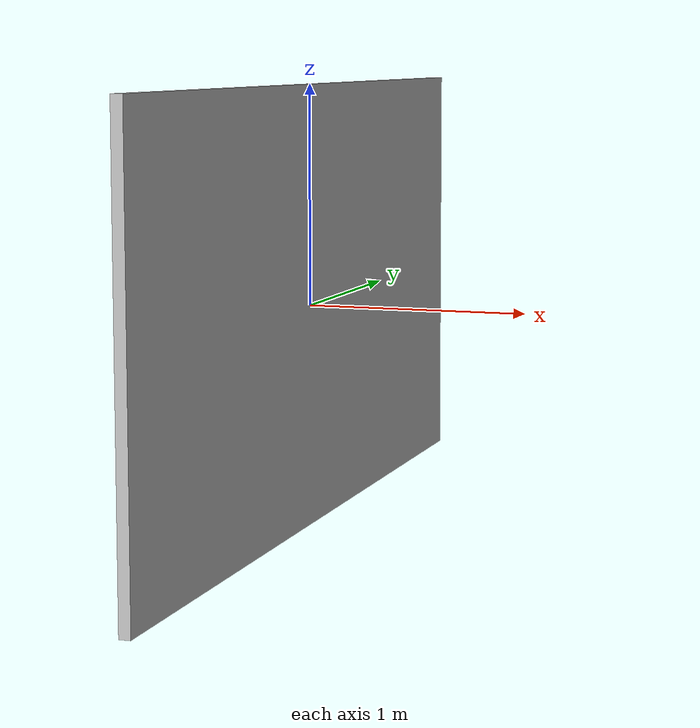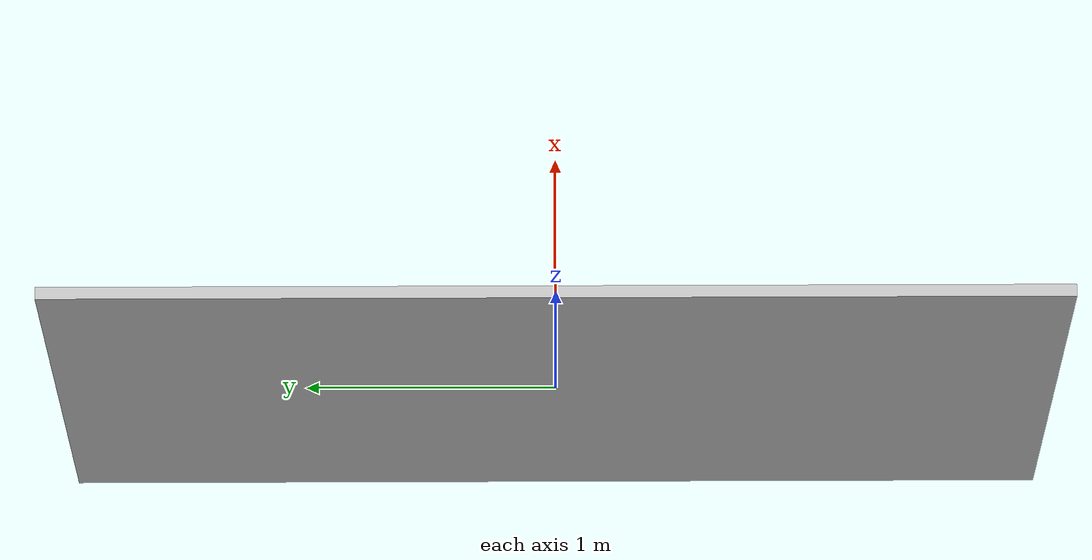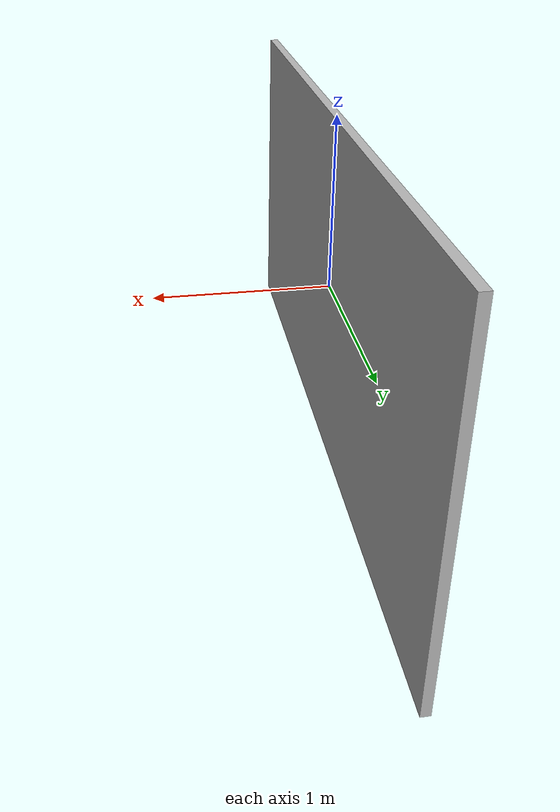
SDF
<?xml version="1.0"?>
<sdf version='1.4'>
  <model name='garage_door_poster'>
    <link name="link">
      <visual name="visual">
        <geometry>
          <box>
            <size>0.05 4. 2</size>
          </box>
        </geometry>
        <material>
          <script>
            <uri>model://garage_door_poster/material/script</uri>
            <uri>model://garage_door_poster/material/textures</uri>
            <name>Custom/garage_door</name>
          </script>
        </material>
      </visual>
    </link>
    <static>1</static>
    <allow_auto_disable>1</allow_auto_disable>
  </model>
</sdf>
